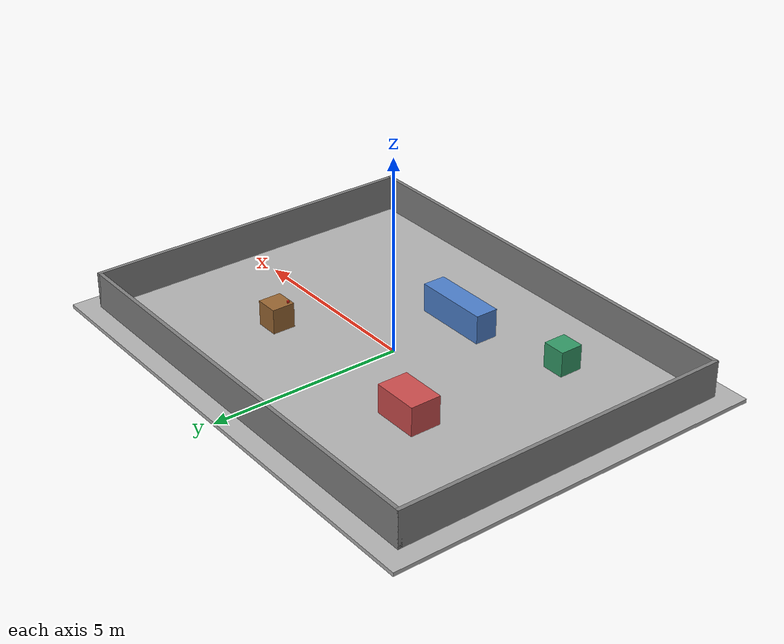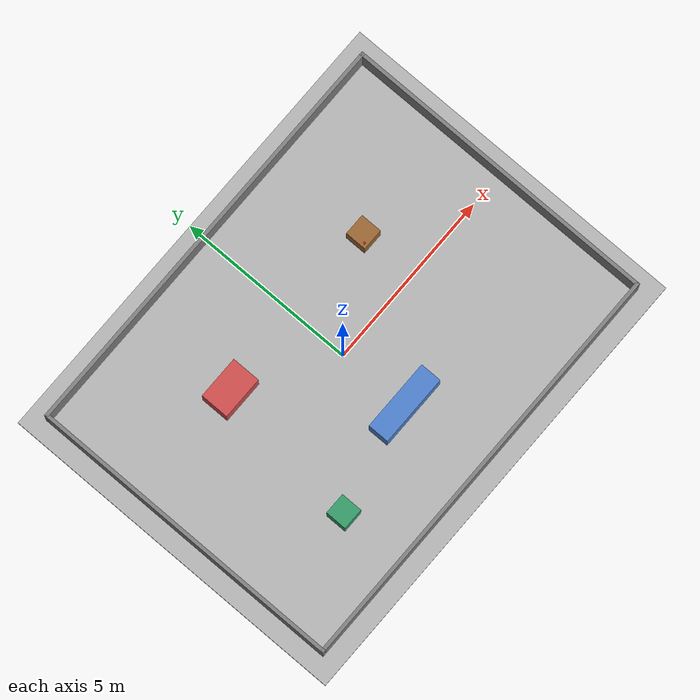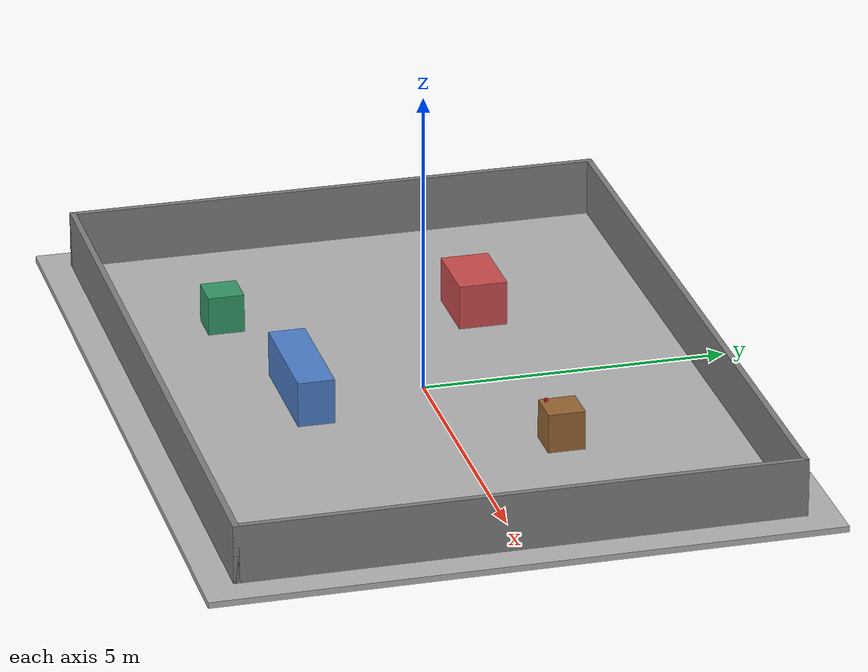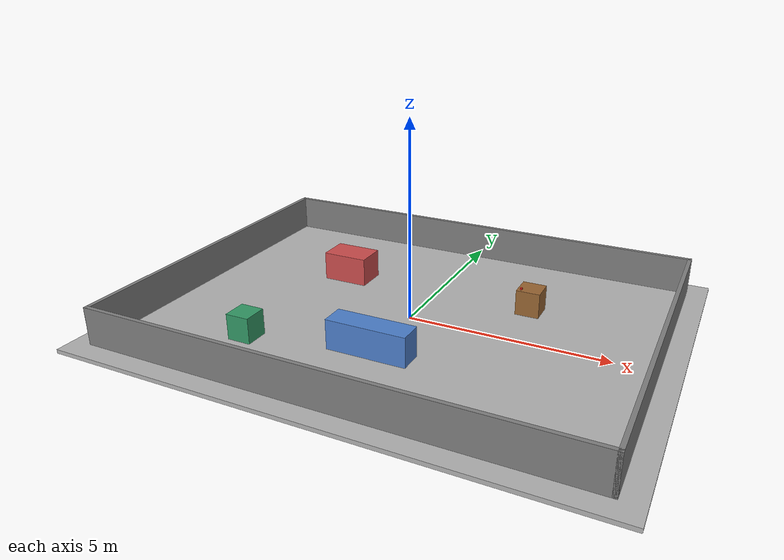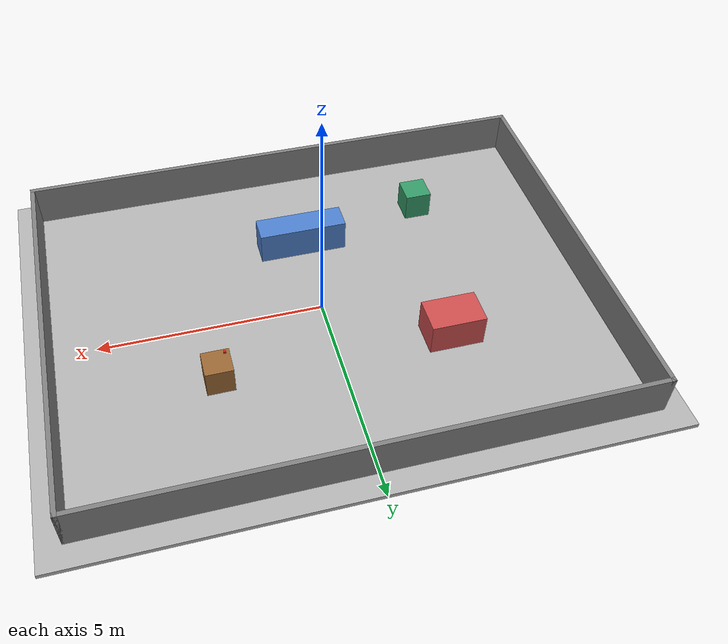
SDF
<?xml version="1.0"?>
<sdf version="1.9">
  <world name="diffbot_world">
    <physics name="default_physics" type="ignored">
      <max_step_size>0.001</max_step_size>
      <real_time_factor>1.0</real_time_factor>
    </physics>
    <plugin filename="gz-sim-physics-system" name="gz::sim::systems::Physics"/>
    <plugin filename="gz-sim-user-commands-system" name="gz::sim::systems::UserCommands"/>
    <plugin filename="gz-sim-scene-broadcaster-system" name="gz::sim::systems::SceneBroadcaster"/>
    <plugin filename="gz-sim-sensors-system" name="gz::sim::systems::Sensors">
      <render_engine>ogre2</render_engine>
    </plugin>
    <plugin filename="gz-sim-imu-system" name="gz::sim::systems::Imu"/>

    <light type="directional" name="sun">
      <cast_shadows>true</cast_shadows>
      <pose>0 0 10 0 0 0</pose>
      <diffuse>0.9 0.9 0.9 1</diffuse>
      <specular>0.2 0.2 0.2 1</specular>
      <direction>-0.5 0.1 -0.9</direction>
    </light>

    <model name="ground_plane">
      <static>true</static>
      <link name="link">
        <collision name="collision">
          <geometry><box><size>13.0 10.0 0.1</size></box></geometry>
        </collision>
        <visual name="visual">
          <geometry><box><size>13.0 10.0 0.1</size></box></geometry>
          <material><ambient>0.7 0.7 0.7 1</ambient><diffuse>0.7 0.7 0.7 1</diffuse></material>
        </visual>
      </link>
    </model>

    <model name="wall_south">
      <static>true</static>
      <pose>0.0 -4.45 0.500 0 0 0</pose>
      <link name="link">
        <collision name="collision">
          <geometry><box><size>12.0 0.1 1.0</size></box></geometry>
        </collision>
        <visual name="visual">
          <geometry><box><size>12.0 0.1 1.0</size></box></geometry>
          <material><ambient>0.5 0.5 0.5 1</ambient><diffuse>0.5 0.5 0.5 1</diffuse></material>
        </visual>
      </link>
    </model>
    <model name="wall_north">
      <static>true</static>
      <pose>0.0 4.45 0.500 0 0 0</pose>
      <link name="link">
        <collision name="collision">
          <geometry><box><size>12.0 0.1 1.0</size></box></geometry>
        </collision>
        <visual name="visual">
          <geometry><box><size>12.0 0.1 1.0</size></box></geometry>
          <material><ambient>0.5 0.5 0.5 1</ambient><diffuse>0.5 0.5 0.5 1</diffuse></material>
        </visual>
      </link>
    </model>
    <model name="wall_west">
      <static>true</static>
      <pose>-5.95 0.0 0.500 0 0 0</pose>
      <link name="link">
        <collision name="collision">
          <geometry><box><size>0.1 9.0 1.0</size></box></geometry>
        </collision>
        <visual name="visual">
          <geometry><box><size>0.1 9.0 1.0</size></box></geometry>
          <material><ambient>0.5 0.5 0.5 1</ambient><diffuse>0.5 0.5 0.5 1</diffuse></material>
        </visual>
      </link>
    </model>
    <model name="wall_east">
      <static>true</static>
      <pose>5.95 0.0 0.500 0 0 0</pose>
      <link name="link">
        <collision name="collision">
          <geometry><box><size>0.1 9.0 1.0</size></box></geometry>
        </collision>
        <visual name="visual">
          <geometry><box><size>0.1 9.0 1.0</size></box></geometry>
          <material><ambient>0.5 0.5 0.5 1</ambient><diffuse>0.5 0.5 0.5 1</diffuse></material>
        </visual>
      </link>
    </model>
    <model name="obstacle_a">
      <static>true</static>
      <pose>-2.5 1.5 0.400 0 0 0</pose>
      <link name="link">
        <collision name="collision">
          <geometry><box><size>1.2 0.8 0.8</size></box></geometry>
        </collision>
        <visual name="visual">
          <geometry><box><size>1.2 0.8 0.8</size></box></geometry>
          <material><ambient>0.8 0.3 0.3 1</ambient><diffuse>0.8 0.3 0.3 1</diffuse></material>
        </visual>
      </link>
    </model>
    <model name="obstacle_b">
      <static>false</static> <!-- dynamic: set_pose 后传感器可见延迟从 ~180ms 降低 (static 需场景重建) -->
      <gravity>true</gravity>
      <pose>0.0 -2.0 0.400 0 0 0</pose>
      <link name="link">
        <collision name="collision">
          <geometry><box><size>2.0 0.6 0.8</size></box></geometry>
        </collision>
        <visual name="visual">
          <geometry><box><size>2.0 0.6 0.8</size></box></geometry>
          <material><ambient>0.3 0.5 0.8 1</ambient><diffuse>0.3 0.5 0.8 1</diffuse></material>
        </visual>
            <inertial>
        <mass>500</mass>
        <inertia><ixx>80</ixx><iyy>160</iyy><izz>220</izz></inertia>
      </inertial>
</link>
    </model>
    <model name="table_pick">
      <static>true</static>
      <pose>2.6 1.55 0.350 0 0 0</pose>
      <link name="link">
        <collision name="collision">
          <geometry><box><size>0.6 0.6 0.7</size></box></geometry>
        </collision>
        <visual name="visual">
          <geometry><box><size>0.6 0.6 0.7</size></box></geometry>
          <material><ambient>0.6 0.4 0.2 1</ambient><diffuse>0.6 0.4 0.2 1</diffuse></material>
        </visual>
      </link>
    </model>
    <model name="table_place">
      <static>true</static>
      <pose>-3.0 -2.6 0.350 0 0 0</pose>
      <link name="link">
        <collision name="collision">
          <geometry><box><size>0.6 0.6 0.7</size></box></geometry>
        </collision>
        <visual name="visual">
          <geometry><box><size>0.6 0.6 0.7</size></box></geometry>
          <material><ambient>0.2 0.6 0.4 1</ambient><diffuse>0.2 0.6 0.4 1</diffuse></material>
        </visual>
      </link>
    </model>

    <!-- 待抓取工件: 立于料台 (table_pick 顶面 z=0.70) 上, 边长 0.05m.
         尺寸匹配夹爪行程: 全张开内侧间距 0.082m > 0.05m (可套入),
         闭合目标内侧 0.022m < 0.05m (指尖压紧工件形成夹持). -->
    <model name="workpiece">
      <pose>2.40 1.35 0.725 0 0 0</pose>
      <link name="link">
        <inertial>
          <mass>0.05</mass>
          <inertia>
            <ixx>0.0000104</ixx><iyy>0.0000104</iyy><izz>0.0000104</izz>
            <ixy>0</ixy><ixz>0</ixz><iyz>0</iyz>
          </inertia>
        </inertial>
        <collision name="collision">
          <geometry><box><size>0.05 0.05 0.05</size></box></geometry>
          <surface>
            <friction><ode><mu>1.5</mu><mu2>1.5</mu2></ode></friction>
          </surface>
        </collision>
        <visual name="visual">
          <geometry><box><size>0.05 0.05 0.05</size></box></geometry>
          <material><ambient>0.9 0.15 0.1 1</ambient><diffuse>0.9 0.15 0.1 1</diffuse></material>
        </visual>
      </link>
    </model>
  </world>
</sdf>
